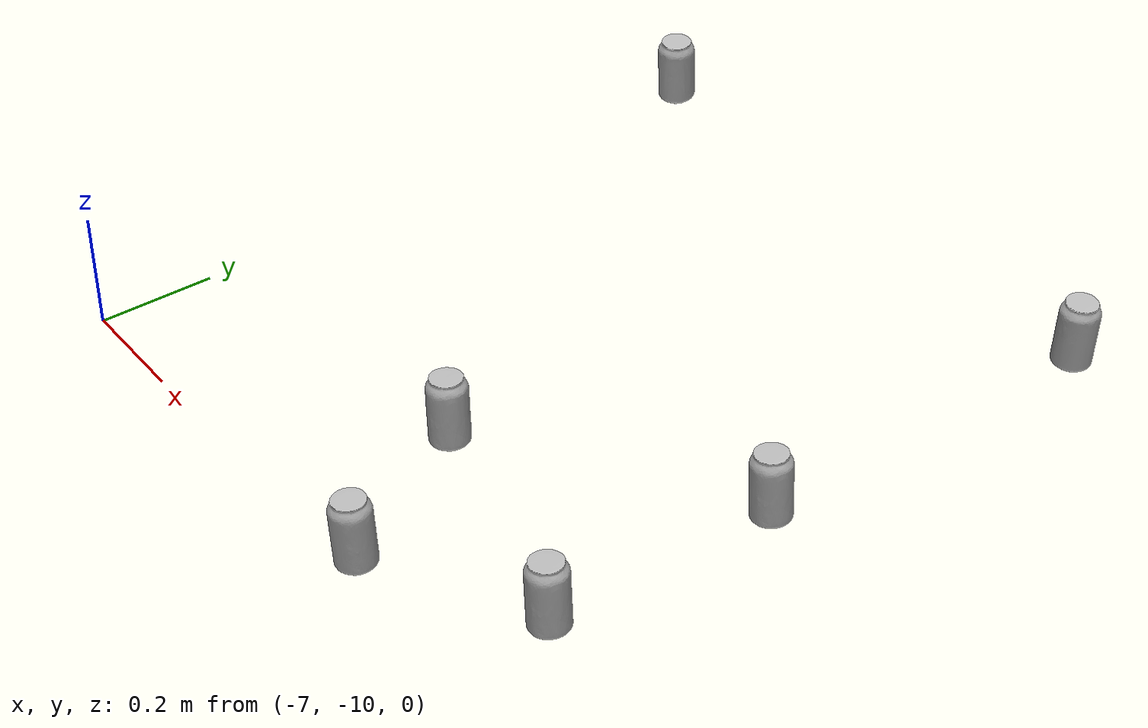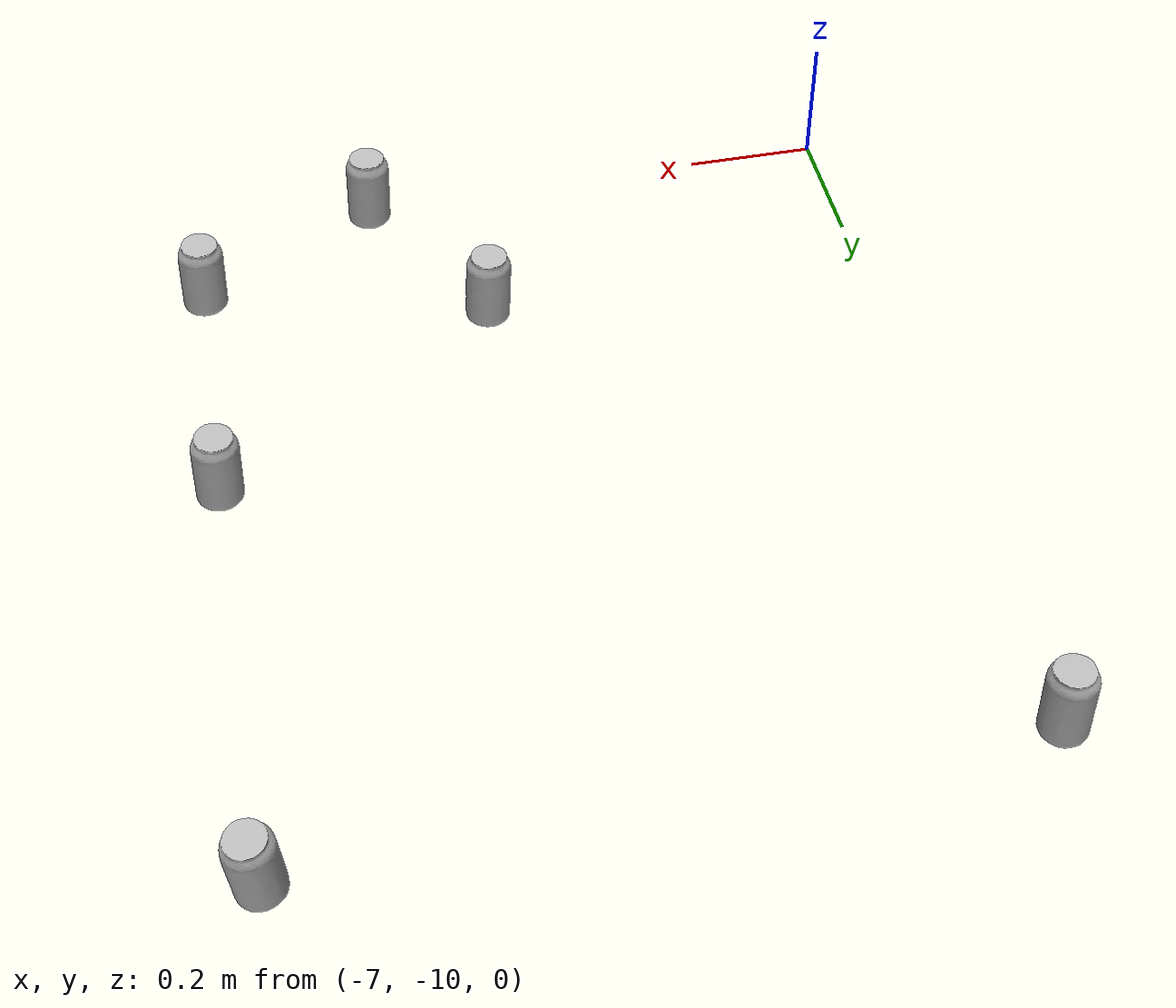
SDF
<sdf version="1.6">
 <world name="default">
  <model name="coke_can105">
   <link name="link">
    <inertial>
     <pose>0 0 0.06 0 -0 0</pose>
     <mass>0.39</mass>
     <inertia>
      <ixx>0.00055575</ixx>
      <ixy>0</ixy>
      <ixz>0</ixz>
      <iyy>0.00055575</iyy>
      <iyz>0</iyz>
      <izz>0.0001755</izz>
     </inertia>
    </inertial>
    <collision name="collision">
     <pose>0.003937 0.004724 -0.18 0 -0 0</pose>
     <geometry><mesh><uri>model://coke_can/meshes/coke_can.dae</uri></mesh></geometry>
     <surface>
      <friction><ode><mu>1</mu><mu2>1</mu2></ode></friction>
      <contact>
       <ode><kp>1e+07</kp><kd>1</kd><min_depth>0.001</min_depth><max_vel>0.1</max_vel></ode>
       <collide_bitmask>256</collide_bitmask>
      </contact>
     </surface>
    </collision>
    <visual name="visual">
     <pose>0.003937 0.004724 -0.18 0 -0 0</pose>
     <geometry><mesh><uri>model://coke_can/meshes/coke_can.dae</uri></mesh></geometry>
    </visual>
   </link>
   <pose>-5.9818 -9.82594 -0.002659 -0.055122 0.007734 1.67029</pose>
  </model>
  <model name="coke_can834">
   <link name="link">
    <inertial>
     <pose>0 0 0.06 0 -0 0</pose>
     <mass>0.39</mass>
     <inertia>
      <ixx>0.00055575</ixx>
      <ixy>0</ixy>
      <ixz>0</ixz>
      <iyy>0.00055575</iyy>
      <iyz>0</iyz>
      <izz>0.0001755</izz>
     </inertia>
    </inertial>
    <collision name="collision">
     <pose>0.003937 0.004724 -0.18 0 -0 0</pose>
     <geometry><mesh><uri>model://coke_can/meshes/coke_can.dae</uri></mesh></geometry>
     <surface>
      <friction><ode><mu>1</mu><mu2>1</mu2></ode></friction>
      <contact>
       <ode><kp>1e+07</kp><kd>1</kd><min_depth>0.001</min_depth><max_vel>0.1</max_vel></ode>
       <collide_bitmask>256</collide_bitmask>
      </contact>
     </surface>
    </collision>
    <visual name="visual">
     <pose>0.003937 0.004724 -0.18 0 -0 0</pose>
     <geometry><mesh><uri>model://coke_can/meshes/coke_can.dae</uri></mesh></geometry>
    </visual>
   </link>
   <pose>-5.97481 -9.42749 -0.002659 -0.055125 0.007732 1.69356</pose>
  </model>
  <model name="coke_can838">
   <link name="link">
    <inertial>
     <pose>0 0 0.06 0 -0 0</pose>
     <mass>0.39</mass>
     <inertia>
      <ixx>0.00055575</ixx>
      <ixy>0</ixy>
      <ixz>0</ixz>
      <iyy>0.00055575</iyy>
      <iyz>0</iyz>
      <izz>0.0001755</izz>
     </inertia>
    </inertial>
    <collision name="collision">
     <pose>0.003937 0.004724 -0.18 0 -0 0</pose>
     <geometry><mesh><uri>model://coke_can/meshes/coke_can.dae</uri></mesh></geometry>
     <surface>
      <friction><ode><mu>1</mu><mu2>1</mu2></ode></friction>
      <contact>
       <ode><kp>1e+07</kp><kd>1</kd><min_depth>0.001</min_depth><max_vel>0.1</max_vel></ode>
       <collide_bitmask>256</collide_bitmask>
      </contact>
     </surface>
    </collision>
    <visual name="visual">
     <pose>0.003937 0.004724 -0.18 0 -0 0</pose>
     <geometry><mesh><uri>model://coke_can/meshes/coke_can.dae</uri></mesh></geometry>
    </visual>
   </link>
   <pose>-6.25549 -9.97462 -0.002659 -0.055103 0.007748 2.26572</pose>
  </model>
  <model name="coke_can857">
   <link name="link">
    <inertial>
     <pose>0 0 0.06 0 -0 0</pose>
     <mass>0.39</mass>
     <inertia>
      <ixx>0.00055575</ixx>
      <ixy>0</ixy>
      <ixz>0</ixz>
      <iyy>0.00055575</iyy>
      <iyz>0</iyz>
      <izz>0.0001755</izz>
     </inertia>
    </inertial>
    <collision name="collision">
     <pose>0.003937 0.004724 -0.18 0 -0 0</pose>
     <geometry><mesh><uri>model://coke_can/meshes/coke_can.dae</uri></mesh></geometry>
     <surface>
      <friction><ode><mu>1</mu><mu2>1</mu2></ode></friction>
      <contact>
       <ode><kp>1e+07</kp><kd>1</kd><min_depth>0.001</min_depth><max_vel>0.1</max_vel></ode>
       <collide_bitmask>256</collide_bitmask>
      </contact>
     </surface>
    </collision>
    <visual name="visual">
     <pose>0.003937 0.004724 -0.18 0 -0 0</pose>
     <geometry><mesh><uri>model://coke_can/meshes/coke_can.dae</uri></mesh></geometry>
    </visual>
   </link>
   <pose>-6.98649 -8.81889 -0.002659 -0.055108 0.007743 -2.39586</pose>
  </model>
  <model name="coke_can914">
   <link name="link">
    <inertial>
     <pose>0 0 0.06 0 -0 0</pose>
     <mass>0.39</mass>
     <inertia>
      <ixx>0.00055575</ixx>
      <ixy>0</ixy>
      <ixz>0</ixz>
      <iyy>0.00055575</iyy>
      <iyz>0</iyz>
      <izz>0.0001755</izz>
     </inertia>
    </inertial>
    <collision name="collision">
     <pose>0.003937 0.004724 -0.18 0 -0 0</pose>
     <geometry><mesh><uri>model://coke_can/meshes/coke_can.dae</uri></mesh></geometry>
     <surface>
      <friction><ode><mu>1</mu><mu2>1</mu2></ode></friction>
      <contact>
       <ode><kp>1e+07</kp><kd>1</kd><min_depth>0.001</min_depth><max_vel>0.1</max_vel></ode>
       <collide_bitmask>256</collide_bitmask>
      </contact>
     </surface>
    </collision>
    <visual name="visual">
     <pose>0.003937 0.004724 -0.18 0 -0 0</pose>
     <geometry><mesh><uri>model://coke_can/meshes/coke_can.dae</uri></mesh></geometry>
    </visual>
   </link>
   <pose>-5.97666 -8.80331 -0.002659 -0.055106 0.007745 -0.90517</pose>
  </model>
  <model name="coke_can958">
   <link name="link">
    <inertial>
     <pose>0 0 0.06 0 -0 0</pose>
     <mass>0.39</mass>
     <inertia>
      <ixx>0.00055575</ixx>
      <ixy>0</ixy>
      <ixz>0</ixz>
      <iyy>0.00055575</iyy>
      <iyz>0</iyz>
      <izz>0.0001755</izz>
     </inertia>
    </inertial>
    <collision name="collision">
     <pose>0.003937 0.004724 -0.18 0 -0 0</pose>
     <geometry><mesh><uri>model://coke_can/meshes/coke_can.dae</uri></mesh></geometry>
     <surface>
      <friction><ode><mu>1</mu><mu2>1</mu2></ode></friction>
      <contact>
       <ode><kp>1e+07</kp><kd>1</kd><min_depth>0.001</min_depth><max_vel>0.1</max_vel></ode>
       <collide_bitmask>256</collide_bitmask>
      </contact>
     </surface>
    </collision>
    <visual name="visual">
     <pose>0.003937 0.004724 -0.18 0 -0 0</pose>
     <geometry><mesh><uri>model://coke_can/meshes/coke_can.dae</uri></mesh></geometry>
    </visual>
   </link>
   <pose>-6.40406 -9.71261 -0.002659 -0.05511 0.007741 1.52036</pose>
  </model>
 </world>
</sdf>
